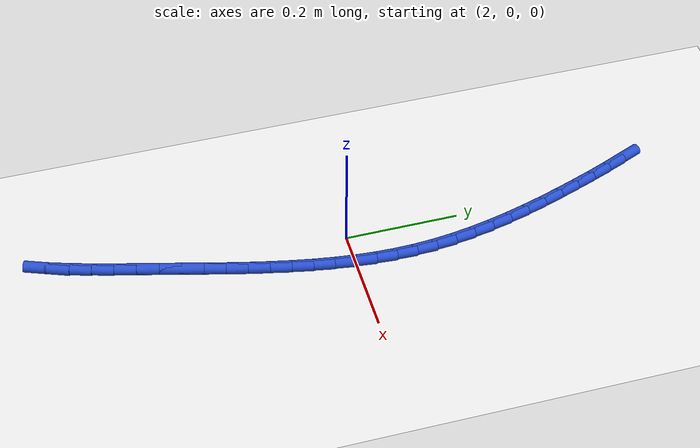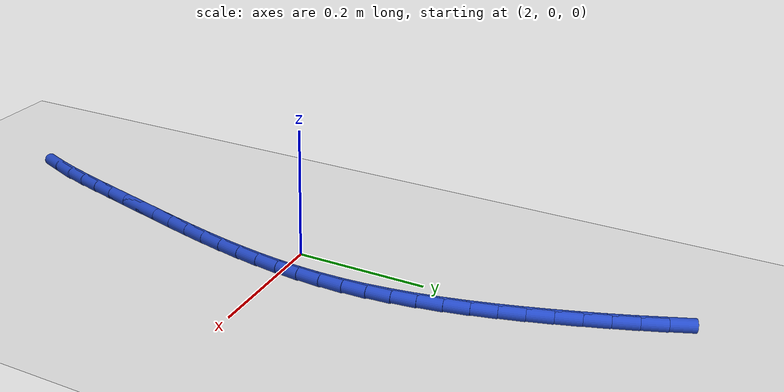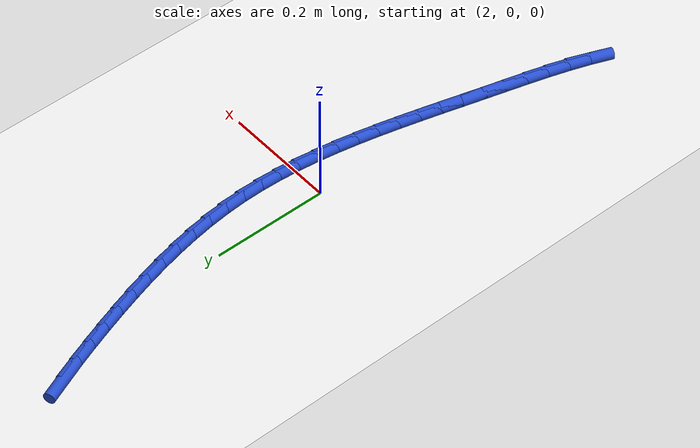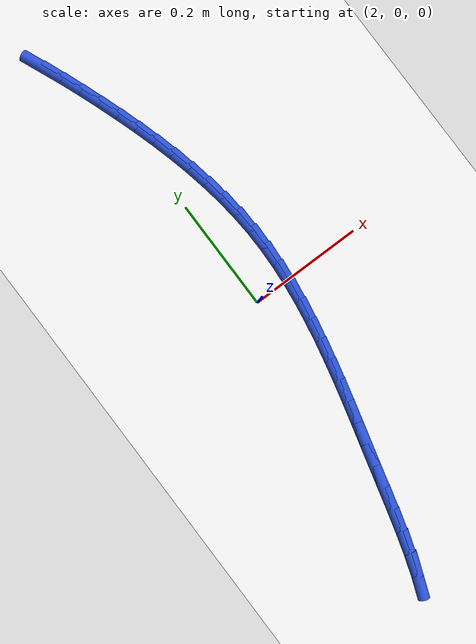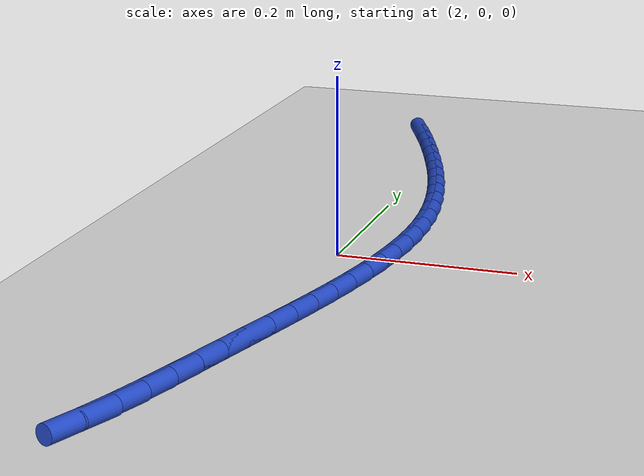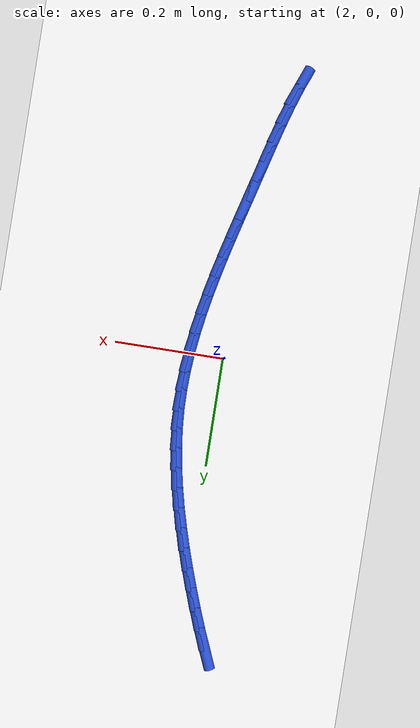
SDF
<sdf version="1.6">
 <world name="default">
  <model name="ground_plane">
   <static>1</static>
   <link name="link">
    <collision name="collision">
     <geometry><plane><normal>0 0 1</normal><size>100 100</size></plane></geometry>
     <surface><friction><ode><mu>100</mu><mu2>50</mu2></ode></friction></surface>
    </collision>
    <visual name="visual">
     <cast_shadows>0</cast_shadows>
     <geometry><plane><normal>0 0 1</normal><size>100 100</size></plane></geometry>
     <material>
      <script><uri>file://media/materials/scripts/gazebo.material</uri><name>Gazebo/WhiteGlow</name></script>
     </material>
    </visual>
   </link>
  </model>
  <model name="line">
   <link name="link_75">
    <pose>1.9519366850897248 0.5269809358445559 0.01 0 1.57 -1.174186013063726</pose>
    <collision name="collision">
     <geometry><cylinder><radius>0.01</radius><length>0.08</length></cylinder></geometry>
    </collision>
    <visual name="visual">
     <material>
      <script><name>Gazebo/Blue</name><uri>file://media/materials/scripts/gazebo.material</uri></script>
     </material>
     <geometry><cylinder><radius>0.01</radius><length>0.08</length></cylinder></geometry>
    </visual>
   </link>
   <link name="link_76">
    <pose>1.9661827074279046 0.49296491488568145 0.01 0 1.57 -1.1991231123865576</pose>
    <collision name="collision">
     <geometry><cylinder><radius>0.01</radius><length>0.08</length></cylinder></geometry>
    </collision>
    <visual name="visual">
     <material>
      <script><name>Gazebo/Blue</name><uri>file://media/materials/scripts/gazebo.material</uri></script>
     </material>
     <geometry><cylinder><radius>0.01</radius><length>0.08</length></cylinder></geometry>
    </visual>
   </link>
   <link name="link_77">
    <pose>1.9796240127252962 0.458481403341526 0.01 0 1.57 -1.2188877542748837</pose>
    <collision name="collision">
     <geometry><cylinder><radius>0.01</radius><length>0.08</length></cylinder></geometry>
    </collision>
    <visual name="visual">
     <material>
      <script><name>Gazebo/Blue</name><uri>file://media/materials/scripts/gazebo.material</uri></script>
     </material>
     <geometry><cylinder><radius>0.01</radius><length>0.08</length></cylinder></geometry>
    </visual>
   </link>
   <link name="link_78">
    <pose>1.9924199422968323 0.42363342556388867 0.01 0 1.57 -1.2349421339759947</pose>
    <collision name="collision">
     <geometry><cylinder><radius>0.01</radius><length>0.08</length></cylinder></geometry>
    </collision>
    <visual name="visual">
     <material>
      <script><name>Gazebo/Blue</name><uri>file://media/materials/scripts/gazebo.material</uri></script>
     </material>
     <geometry><cylinder><radius>0.01</radius><length>0.08</length></cylinder></geometry>
    </visual>
   </link>
   <link name="link_79">
    <pose>2.004679489474283 0.3885137441155916 0.01 0 1.57 -1.2532630219608907</pose>
    <collision name="collision">
     <geometry><cylinder><radius>0.01</radius><length>0.08</length></cylinder></geometry>
    </collision>
    <visual name="visual">
     <material>
      <script><name>Gazebo/Blue</name><uri>file://media/materials/scripts/gazebo.material</uri></script>
     </material>
     <geometry><cylinder><radius>0.01</radius><length>0.08</length></cylinder></geometry>
    </visual>
   </link>
   <link name="link_80">
    <pose>2.016295034657953 0.35317097210097603 0.01 0 1.57 -1.2755494375261012</pose>
    <collision name="collision">
     <geometry><cylinder><radius>0.01</radius><length>0.08</length></cylinder></geometry>
    </collision>
    <visual name="visual">
     <material>
      <script><name>Gazebo/Blue</name><uri>file://media/materials/scripts/gazebo.material</uri></script>
     </material>
     <geometry><cylinder><radius>0.01</radius><length>0.08</length></cylinder></geometry>
    </visual>
   </link>
   <link name="link_81">
    <pose>2.0271007165072614 0.3176418519511814 0.01 0 1.57 -1.3019531537388538</pose>
    <collision name="collision">
     <geometry><cylinder><radius>0.01</radius><length>0.08</length></cylinder></geometry>
    </collision>
    <visual name="visual">
     <material>
      <script><name>Gazebo/Blue</name><uri>file://media/materials/scripts/gazebo.material</uri></script>
     </material>
     <geometry><cylinder><radius>0.01</radius><length>0.08</length></cylinder></geometry>
    </visual>
   </link>
   <link name="link_82">
    <pose>2.0369306729060135 0.2819631259392626 0.01 0 1.57 -1.3326537900142688</pose>
    <collision name="collision">
     <geometry><cylinder><radius>0.01</radius><length>0.08</length></cylinder></geometry>
    </collision>
    <visual name="visual">
     <material>
      <script><name>Gazebo/Blue</name><uri>file://media/materials/scripts/gazebo.material</uri></script>
     </material>
     <geometry><cylinder><radius>0.01</radius><length>0.08</length></cylinder></geometry>
    </visual>
   </link>
   <link name="link_83">
    <pose>2.0456190417380165 0.2461715363382743 0.01 0 1.57 -1.3678476548385323</pose>
    <collision name="collision">
     <geometry><cylinder><radius>0.01</radius><length>0.08</length></cylinder></geometry>
    </collision>
    <visual name="visual">
     <material>
      <script><name>Gazebo/Blue</name><uri>file://media/materials/scripts/gazebo.material</uri></script>
     </material>
     <geometry><cylinder><radius>0.01</radius><length>0.08</length></cylinder></geometry>
    </visual>
   </link>
   <link name="link_84">
    <pose>2.0529999608870746 0.21030382542127224 0.01 0 1.57 -1.4077323337502987</pose>
    <collision name="collision">
     <geometry><cylinder><radius>0.01</radius><length>0.08</length></cylinder></geometry>
    </collision>
    <visual name="visual">
     <material>
      <script><name>Gazebo/Blue</name><uri>file://media/materials/scripts/gazebo.material</uri></script>
     </material>
     <geometry><cylinder><radius>0.01</radius><length>0.08</length></cylinder></geometry>
    </visual>
   </link>
   <link name="link_85">
    <pose>2.058907568236993 0.17439673546131088 0.01 0 1.57 -1.4524857859428293</pose>
    <collision name="collision">
     <geometry><cylinder><radius>0.01</radius><length>0.08</length></cylinder></geometry>
    </collision>
    <visual name="visual">
     <material>
      <script><name>Gazebo/Blue</name><uri>file://media/materials/scripts/gazebo.material</uri></script>
     </material>
     <geometry><cylinder><radius>0.01</radius><length>0.08</length></cylinder></geometry>
    </visual>
   </link>
   <link name="link_86">
    <pose>2.063176001671578 0.13848700873144587 0.01 0 1.57 -1.502238902006572</pose>
    <collision name="collision">
     <geometry><cylinder><radius>0.01</radius><length>0.08</length></cylinder></geometry>
    </collision>
    <visual name="visual">
     <material>
      <script><name>Gazebo/Blue</name><uri>file://media/materials/scripts/gazebo.material</uri></script>
     </material>
     <geometry><cylinder><radius>0.01</radius><length>0.08</length></cylinder></geometry>
    </visual>
   </link>
   <link name="link_87">
    <pose>2.065639402556073 0.10261138686794108 0.01 0 1.57 -1.5552907972759409</pose>
    <collision name="collision">
     <geometry><cylinder><radius>0.01</radius><length>0.08</length></cylinder></geometry>
    </collision>
    <visual name="visual">
     <material>
      <script><name>Gazebo/Blue</name><uri>file://media/materials/scripts/gazebo.material</uri></script>
     </material>
     <geometry><cylinder><radius>0.01</radius><length>0.08</length></cylinder></geometry>
    </visual>
   </link>
   <link name="link_88">
    <pose>2.0661947974176416 0.06679510916104645 0.01 0 1.57 1.536364882962839</pose>
    <collision name="collision">
     <geometry><cylinder><radius>0.01</radius><length>0.08</length></cylinder></geometry>
    </collision>
    <visual name="visual">
     <material>
      <script><name>Gazebo/Blue</name><uri>file://media/materials/scripts/gazebo.material</uri></script>
     </material>
     <geometry><cylinder><radius>0.01</radius><length>0.08</length></cylinder></geometry>
    </visual>
   </link>
   <link name="link_89">
    <pose>2.064962609701651 0.0310225532959361 0.01 0 1.57 1.4912587195037728</pose>
    <collision name="collision">
     <geometry><cylinder><radius>0.01</radius><length>0.08</length></cylinder></geometry>
    </collision>
    <visual name="visual">
     <material>
      <script><name>Gazebo/Blue</name><uri>file://media/materials/scripts/gazebo.material</uri></script>
     </material>
     <geometry><cylinder><radius>0.01</radius><length>0.08</length></cylinder></geometry>
    </visual>
   </link>
   <link name="link_90">
    <pose>2.062112847842518 -0.004730972649159733 0.01 0 1.57 1.4511957939687348</pose>
    <collision name="collision">
     <geometry><cylinder><radius>0.01</radius><length>0.08</length></cylinder></geometry>
    </collision>
    <visual name="visual">
     <material>
      <script><name>Gazebo/Blue</name><uri>file://media/materials/scripts/gazebo.material</uri></script>
     </material>
     <geometry><cylinder><radius>0.01</radius><length>0.08</length></cylinder></geometry>
    </visual>
   </link>
   <link name="link_91">
    <pose>2.057815520274661 -0.04049016059601057 0.01 0 1.57 1.416269600788045</pose>
    <collision name="collision">
     <geometry><cylinder><radius>0.01</radius><length>0.08</length></cylinder></geometry>
    </collision>
    <visual name="visual">
     <material>
      <script><name>Gazebo/Blue</name><uri>file://media/materials/scripts/gazebo.material</uri></script>
     </material>
     <geometry><cylinder><radius>0.01</radius><length>0.08</length></cylinder></geometry>
    </visual>
   </link>
   <link name="link_92">
    <pose>2.0522406354324985 -0.07627970246638667 0.01 0 1.57 1.3864842001103879</pose>
    <collision name="collision">
     <geometry><cylinder><radius>0.01</radius><length>0.08</length></cylinder></geometry>
    </collision>
    <visual name="visual">
     <material>
      <script><name>Gazebo/Blue</name><uri>file://media/materials/scripts/gazebo.material</uri></script>
     </material>
     <geometry><cylinder><radius>0.01</radius><length>0.08</length></cylinder></geometry>
    </visual>
   </link>
   <link name="link_93">
    <pose>2.0455582017504486 -0.11212429018205604 0.01 0 1.57 1.361782370999034</pose>
    <collision name="collision">
     <geometry><cylinder><radius>0.01</radius><length>0.08</length></cylinder></geometry>
    </collision>
    <visual name="visual">
     <material>
      <script><name>Gazebo/Blue</name><uri>file://media/materials/scripts/gazebo.material</uri></script>
     </material>
     <geometry><cylinder><radius>0.01</radius><length>0.08</length></cylinder></geometry>
    </visual>
   </link>
   <link name="link_94">
    <pose>2.0379382276629285 -0.14804861566478889 0.01 0 1.57 1.3420699366325766</pose>
    <collision name="collision">
     <geometry><cylinder><radius>0.01</radius><length>0.08</length></cylinder></geometry>
    </collision>
    <visual name="visual">
     <material>
      <script><name>Gazebo/Blue</name><uri>file://media/materials/scripts/gazebo.material</uri></script>
     </material>
     <geometry><cylinder><radius>0.01</radius><length>0.08</length></cylinder></geometry>
    </visual>
   </link>
   <link name="link_95">
    <pose>2.0295507216043585 -0.18407737083635478 0.01 0 1.57 1.3272352080297214</pose>
    <collision name="collision">
     <geometry><cylinder><radius>0.01</radius><length>0.08</length></cylinder></geometry>
    </collision>
    <visual name="visual">
     <material>
      <script><name>Gazebo/Blue</name><uri>file://media/materials/scripts/gazebo.material</uri></script>
     </material>
     <geometry><cylinder><radius>0.01</radius><length>0.08</length></cylinder></geometry>
    </visual>
   </link>
   <link name="link_96">
    <pose>2.0205656920091544 -0.22023524761852317 0.01 0 1.57 1.3171634475435643</pose>
    <collision name="collision">
     <geometry><cylinder><radius>0.01</radius><length>0.08</length></cylinder></geometry>
    </collision>
    <visual name="visual">
     <material>
      <script><name>Gazebo/Blue</name><uri>file://media/materials/scripts/gazebo.material</uri></script>
     </material>
     <geometry><cylinder><radius>0.01</radius><length>0.08</length></cylinder></geometry>
    </visual>
   </link>
   <link name="link_97">
    <pose>2.0111531473117354 -0.2565469379330636 0.01 0 1.57 1.3117467684964588</pose>
    <collision name="collision">
     <geometry><cylinder><radius>0.01</radius><length>0.08</length></cylinder></geometry>
    </collision>
    <visual name="visual">
     <material>
      <script><name>Gazebo/Blue</name><uri>file://media/materials/scripts/gazebo.material</uri></script>
     </material>
     <geometry><cylinder><radius>0.01</radius><length>0.08</length></cylinder></geometry>
    </visual>
   </link>
   <link name="link_98">
    <pose>2.001483095946519 -0.2930371337017462 0.01 0 1.57 1.310890078390269</pose>
    <collision name="collision">
     <geometry><cylinder><radius>0.01</radius><length>0.08</length></cylinder></geometry>
    </collision>
    <visual name="visual">
     <material>
      <script><name>Gazebo/Blue</name><uri>file://media/materials/scripts/gazebo.material</uri></script>
     </material>
     <geometry><cylinder><radius>0.01</radius><length>0.08</length></cylinder></geometry>
    </visual>
   </link>
   <link name="link_99">
    <pose>1.9917255463479242 -0.32973052684633913 0.01 0 1.57 1.3139359701205375</pose>
    <collision name="collision">
     <geometry><cylinder><radius>0.01</radius><length>0.08</length></cylinder></geometry>
    </collision>
    <visual name="visual">
     <material>
      <script><name>Gazebo/Blue</name><uri>file://media/materials/scripts/gazebo.material</uri></script>
     </material>
     <geometry><cylinder><radius>0.01</radius><length>0.08</length></cylinder></geometry>
    </visual>
   </link>
   <link name="link_100">
    <pose>1.982031015890064 -0.36663922204283567 0.01 0 1.57 1.3127797514843818</pose>
    <collision name="collision">
     <geometry><cylinder><radius>0.01</radius><length>0.08</length></cylinder></geometry>
    </collision>
    <visual name="visual">
     <material>
      <script><name>Gazebo/Blue</name><uri>file://media/materials/scripts/gazebo.material</uri></script>
     </material>
     <geometry><cylinder><radius>0.01</radius><length>0.08</length></cylinder></geometry>
    </visual>
   </link>
   <link name="link_101">
    <pose>1.9722773162778826 -0.40359921177892 0.01 0 1.57 1.3014597124833533</pose>
    <collision name="collision">
     <geometry><cylinder><radius>0.01</radius><length>0.08</length></cylinder></geometry>
    </collision>
    <visual name="visual">
     <material>
      <script><name>Gazebo/Blue</name><uri>file://media/materials/scripts/gazebo.material</uri></script>
     </material>
     <geometry><cylinder><radius>0.01</radius><length>0.08</length></cylinder></geometry>
    </visual>
   </link>
   <link name="link_102">
    <pose>1.962141612903937 -0.4403169119872396 0.01 0 1.57 1.2795538844402508</pose>
    <collision name="collision">
     <geometry><cylinder><radius>0.01</radius><length>0.08</length></cylinder></geometry>
    </collision>
    <visual name="visual">
     <material>
      <script><name>Gazebo/Blue</name><uri>file://media/materials/scripts/gazebo.material</uri></script>
     </material>
     <geometry><cylinder><radius>0.01</radius><length>0.08</length></cylinder></geometry>
    </visual>
   </link>
   <link name="link_103">
    <pose>1.951296418697075 -0.47649573405870543 0.01 0 1.57 1.2464747047619973</pose>
    <collision name="collision">
     <geometry><cylinder><radius>0.01</radius><length>0.08</length></cylinder></geometry>
    </collision>
    <visual name="visual">
     <material>
      <script><name>Gazebo/Blue</name><uri>file://media/materials/scripts/gazebo.material</uri></script>
     </material>
     <geometry><cylinder><radius>0.01</radius><length>0.08</length></cylinder></geometry>
    </visual>
   </link>
   <link name="link_104">
    <pose>1.9394142465861448 -0.5118390893842261 0.01 0 1.57 1.2013723459344199</pose>
    <collision name="collision">
     <geometry><cylinder><radius>0.01</radius><length>0.08</length></cylinder></geometry>
    </collision>
    <visual name="visual">
     <material>
      <script><name>Gazebo/Blue</name><uri>file://media/materials/scripts/gazebo.material</uri></script>
     </material>
     <geometry><cylinder><radius>0.01</radius><length>0.08</length></cylinder></geometry>
    </visual>
   </link>
  </model>
 </world>
</sdf>
